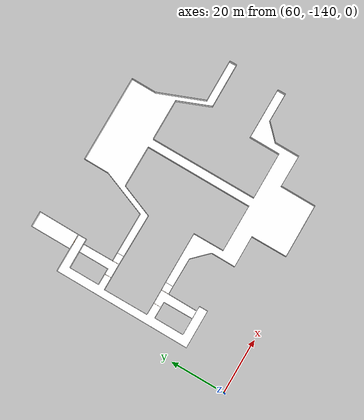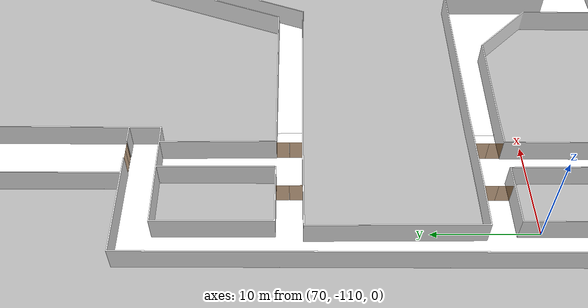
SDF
<sdf version="1.7">
 <world name="world">
  <scene><ambient>0.8 0.8 0.8 1.0</ambient><background>0 0 0</background><grid>false</grid></scene>
  <include><uri>model://sun</uri></include>
  <model name="L1_door1">
   <pose>77.99642685221026 -71.89985735139282 0.0 0 0 -3.137691997890062</pose>
   <link name="right">
    <pose>0.5355837918426652 0 1.11 0 0 0</pose>
    <visual name="right_visual">
     <geometry><box><size>1.0611675836853305 0.03 2.2</size></box></geometry>
     <material><ambient>0.5 0.25 0 0.6</ambient><diffuse>0.5 0.25 0 0.6</diffuse></material>
    </visual>
    <collision name="right_collision">
     <geometry><box><size>1.0611675836853305 0.03 2.2</size></box></geometry>
     <surface><contact><collide_bitmask>0x02</collide_bitmask></contact></surface>
    </collision>
    <inertial>
     <mass>50.0</mass>
     <inertia><ixx>20.17041666666667</ixx><iyy>24.85865266943568</iyy><izz>4.695736002769012</izz></inertia>
    </inertial>
   </link>
   <joint name="right_joint" type="revolute">
    <parent>world</parent>
    <child>right</child>
    <axis><xyz>0 0 -1</xyz><limit><lower>0</lower><upper>1.57</upper></limit></axis>
    <pose>0.5355837918426652 0 0 0 0 0</pose>
   </joint>
   <link name="left">
    <pose>-0.5355837918426652 0 1.11 0 0 0</pose>
    <visual name="left_visual">
     <geometry><box><size>1.0611675836853305 0.03 2.2</size></box></geometry>
     <material><ambient>0.5 0.25 0 0.6</ambient><diffuse>0.5 0.25 0 0.6</diffuse></material>
    </visual>
    <collision name="left_collision">
     <geometry><box><size>1.0611675836853305 0.03 2.2</size></box></geometry>
     <surface><contact><collide_bitmask>0x02</collide_bitmask></contact></surface>
    </collision>
    <inertial>
     <mass>50.0</mass>
     <inertia><ixx>20.17041666666667</ixx><iyy>24.85865266943568</iyy><izz>4.695736002769012</izz></inertia>
    </inertial>
   </link>
   <joint name="left_joint" type="revolute">
    <parent>world</parent>
    <child>left</child>
    <axis><xyz>0 0 -1</xyz><limit><lower>-1.57</lower><upper>0</upper></limit></axis>
    <pose>-0.5355837918426652 0 0 0 0 0</pose>
   </joint>
   <plugin name="door" filename="libdoor.so">
    <v_max_door>0.5</v_max_door>
    <a_max_door>0.3</a_max_door>
    <a_nom_door>0.15</a_nom_door>
    <dx_min_door>0.01</dx_min_door>
    <f_max_door>500.0</f_max_door>
    <door name="L1_door1" type="DoubleSwingDoor" left_joint_name="left_joint" right_joint_name="right_joint"/>
   </plugin>
  </model>
  <model name="L1_door4">
   <pose>73.75459065098626 -106.46719445150771 0.0 0 0 1.5707963267948966</pose>
   <link name="right">
    <pose>0.699244644789033 0 1.11 0 0 0</pose>
    <visual name="right_visual">
     <geometry><box><size>1.388489289578066 0.03 2.2</size></box></geometry>
     <material><ambient>0.5 0.25 0 0.6</ambient><diffuse>0.5 0.25 0 0.6</diffuse></material>
    </visual>
    <collision name="right_collision">
     <geometry><box><size>1.388489289578066 0.03 2.2</size></box></geometry>
     <surface><contact><collide_bitmask>0x02</collide_bitmask></contact></surface>
    </collision>
    <inertial>
     <mass>50.0</mass>
     <inertia><ixx>20.17041666666667</ixx><iyy>28.199593780304184</iyy><izz>8.036677113637511</izz></inertia>
    </inertial>
   </link>
   <joint name="right_joint" type="prismatic">
    <parent>world</parent>
    <child>right</child>
    <axis>
     <xyz>1 0 0</xyz>
     <limit><lower>0.0</lower><upper>1.398489289578066</upper><effort>500.0</effort></limit>
    </axis>
   </joint>
   <link name="left">
    <pose>-0.699244644789033 0 1.11 0 0 0</pose>
    <visual name="left_visual">
     <geometry><box><size>1.388489289578066 0.03 2.2</size></box></geometry>
     <material><ambient>0.5 0.25 0 0.6</ambient><diffuse>0.5 0.25 0 0.6</diffuse></material>
    </visual>
    <collision name="left_collision">
     <geometry><box><size>1.388489289578066 0.03 2.2</size></box></geometry>
     <surface><contact><collide_bitmask>0x02</collide_bitmask></contact></surface>
    </collision>
    <inertial>
     <mass>50.0</mass>
     <inertia><ixx>20.17041666666667</ixx><iyy>28.199593780304184</iyy><izz>8.036677113637511</izz></inertia>
    </inertial>
   </link>
   <joint name="left_joint" type="prismatic">
    <parent>world</parent>
    <child>left</child>
    <axis>
     <xyz>1 0 0</xyz>
     <limit><lower>-1.398489289578066</lower><upper>0.0</upper><effort>500.0</effort></limit>
    </axis>
   </joint>
   <plugin name="door" filename="libdoor.so">
    <v_max_door>0.2</v_max_door>
    <a_max_door>0.2</a_max_door>
    <a_nom_door>0.08</a_nom_door>
    <dx_min_door>0.001</dx_min_door>
    <f_max_door>100.0</f_max_door>
    <door name="L1_door4" type="DoubleSlidingDoor" left_joint_name="left_joint" right_joint_name="right_joint"/>
   </plugin>
  </model>
  <model name="L1_door2">
   <pose>73.8762183539019 -87.39019242674723 0.0 0 0 1.5826411842154644</pose>
   <link name="right">
    <pose>0.6388322865796074 0 1.11 0 0 0</pose>
    <visual name="right_visual">
     <geometry><box><size>1.2676645731592149 0.03 2.2</size></box></geometry>
     <material><ambient>0.5 0.25 0 0.6</ambient><diffuse>0.5 0.25 0 0.6</diffuse></material>
    </visual>
    <collision name="right_collision">
     <geometry><box><size>1.2676645731592149 0.03 2.2</size></box></geometry>
     <surface><contact><collide_bitmask>0x02</collide_bitmask></contact></surface>
    </collision>
    <inertial>
     <mass>50.0</mass>
     <inertia><ixx>20.17041666666667</ixx><iyy>26.862389458512233</iyy><izz>6.699472791845561</izz></inertia>
    </inertial>
   </link>
   <joint name="right_joint" type="prismatic">
    <parent>world</parent>
    <child>right</child>
    <axis>
     <xyz>1 0 0</xyz>
     <limit><lower>0.0</lower><upper>1.277664573159215</upper><effort>500.0</effort></limit>
    </axis>
   </joint>
   <link name="left">
    <pose>-0.6388322865796074 0 1.11 0 0 0</pose>
    <visual name="left_visual">
     <geometry><box><size>1.2676645731592149 0.03 2.2</size></box></geometry>
     <material><ambient>0.5 0.25 0 0.6</ambient><diffuse>0.5 0.25 0 0.6</diffuse></material>
    </visual>
    <collision name="left_collision">
     <geometry><box><size>1.2676645731592149 0.03 2.2</size></box></geometry>
     <surface><contact><collide_bitmask>0x02</collide_bitmask></contact></surface>
    </collision>
    <inertial>
     <mass>50.0</mass>
     <inertia><ixx>20.17041666666667</ixx><iyy>26.862389458512233</iyy><izz>6.699472791845561</izz></inertia>
    </inertial>
   </link>
   <joint name="left_joint" type="prismatic">
    <parent>world</parent>
    <child>left</child>
    <axis>
     <xyz>1 0 0</xyz>
     <limit><lower>-1.277664573159215</lower><upper>0.0</upper><effort>500.0</effort></limit>
    </axis>
   </joint>
   <plugin name="door" filename="libdoor.so">
    <v_max_door>0.2</v_max_door>
    <a_max_door>0.2</a_max_door>
    <a_nom_door>0.08</a_nom_door>
    <dx_min_door>0.001</dx_min_door>
    <f_max_door>100.0</f_max_door>
    <door name="L1_door2" type="DoubleSlidingDoor" left_joint_name="left_joint" right_joint_name="right_joint"/>
   </plugin>
  </model>
  <model name="L1_door3">
   <pose>78.99411031391465 -87.37877868336511 0.0 0 0 1.5707963267948966</pose>
   <link name="right">
    <pose>0.6330806011208416 0 1.11 0 0 0</pose>
    <visual name="right_visual">
     <geometry><box><size>1.2561612022416833 0.03 2.2</size></box></geometry>
     <material><ambient>0.5 0.25 0 0.6</ambient><diffuse>0.5 0.25 0 0.6</diffuse></material>
    </visual>
    <collision name="right_collision">
     <geometry><box><size>1.2561612022416833 0.03 2.2</size></box></geometry>
     <surface><contact><collide_bitmask>0x02</collide_bitmask></contact></surface>
    </collision>
    <inertial>
     <mass>50.0</mass>
     <inertia><ixx>20.17041666666667</ixx><iyy>26.741420691738636</iyy><izz>6.578504025071964</izz></inertia>
    </inertial>
   </link>
   <joint name="right_joint" type="revolute">
    <parent>world</parent>
    <child>right</child>
    <axis><xyz>0 0 -1</xyz><limit><lower>0</lower><upper>1.57</upper></limit></axis>
    <pose>0.6330806011208416 0 0 0 0 0</pose>
   </joint>
   <link name="left">
    <pose>-0.6330806011208416 0 1.11 0 0 0</pose>
    <visual name="left_visual">
     <geometry><box><size>1.2561612022416833 0.03 2.2</size></box></geometry>
     <material><ambient>0.5 0.25 0 0.6</ambient><diffuse>0.5 0.25 0 0.6</diffuse></material>
    </visual>
    <collision name="left_collision">
     <geometry><box><size>1.2561612022416833 0.03 2.2</size></box></geometry>
     <surface><contact><collide_bitmask>0x02</collide_bitmask></contact></surface>
    </collision>
    <inertial>
     <mass>50.0</mass>
     <inertia><ixx>20.17041666666667</ixx><iyy>26.741420691738636</iyy><izz>6.578504025071964</izz></inertia>
    </inertial>
   </link>
   <joint name="left_joint" type="revolute">
    <parent>world</parent>
    <child>left</child>
    <axis><xyz>0 0 -1</xyz><limit><lower>-1.57</lower><upper>0</upper></limit></axis>
    <pose>-0.6330806011208416 0 0 0 0 0</pose>
   </joint>
   <plugin name="door" filename="libdoor.so">
    <v_max_door>0.5</v_max_door>
    <a_max_door>0.3</a_max_door>
    <a_nom_door>0.15</a_nom_door>
    <dx_min_door>0.01</dx_min_door>
    <f_max_door>500.0</f_max_door>
    <door name="L1_door3" type="DoubleSwingDoor" left_joint_name="left_joint" right_joint_name="right_joint"/>
   </plugin>
  </model>
  <model name="L1_door5">
   <pose>78.82616523272068 -106.42398528013256 0.0 0 0 1.5707963267948966</pose>
   <link name="right">
    <pose>0.7026076227498308 0 1.11 0 0 0</pose>
    <visual name="right_visual">
     <geometry><box><size>1.3952152454996616 0.03 2.2</size></box></geometry>
     <material><ambient>0.5 0.25 0 0.6</ambient><diffuse>0.5 0.25 0 0.6</diffuse></material>
    </visual>
    <collision name="right_collision">
     <geometry><box><size>1.3952152454996616 0.03 2.2</size></box></geometry>
     <surface><contact><collide_bitmask>0x02</collide_bitmask></contact></surface>
    </collision>
    <inertial>
     <mass>50.0</mass>
     <inertia><ixx>20.17041666666667</ixx><iyy>28.27760658864451</iyy><izz>8.114689921977837</izz></inertia>
    </inertial>
   </link>
   <joint name="right_joint" type="revolute">
    <parent>world</parent>
    <child>right</child>
    <axis><xyz>0 0 -1</xyz><limit><lower>0</lower><upper>1.57</upper></limit></axis>
    <pose>0.7026076227498308 0 0 0 0 0</pose>
   </joint>
   <link name="left">
    <pose>-0.7026076227498308 0 1.11 0 0 0</pose>
    <visual name="left_visual">
     <geometry><box><size>1.3952152454996616 0.03 2.2</size></box></geometry>
     <material><ambient>0.5 0.25 0 0.6</ambient><diffuse>0.5 0.25 0 0.6</diffuse></material>
    </visual>
    <collision name="left_collision">
     <geometry><box><size>1.3952152454996616 0.03 2.2</size></box></geometry>
     <surface><contact><collide_bitmask>0x02</collide_bitmask></contact></surface>
    </collision>
    <inertial>
     <mass>50.0</mass>
     <inertia><ixx>20.17041666666667</ixx><iyy>28.27760658864451</iyy><izz>8.114689921977837</izz></inertia>
    </inertial>
   </link>
   <joint name="left_joint" type="revolute">
    <parent>world</parent>
    <child>left</child>
    <axis><xyz>0 0 -1</xyz><limit><lower>-1.57</lower><upper>0</upper></limit></axis>
    <pose>-0.7026076227498308 0 0 0 0 0</pose>
   </joint>
   <plugin name="door" filename="libdoor.so">
    <v_max_door>0.5</v_max_door>
    <a_max_door>0.3</a_max_door>
    <a_nom_door>0.15</a_nom_door>
    <dx_min_door>0.01</dx_min_door>
    <f_max_door>500.0</f_max_door>
    <door name="L1_door5" type="DoubleSwingDoor" left_joint_name="left_joint" right_joint_name="right_joint"/>
   </plugin>
  </model>
  <include><name>glhd_L1</name><uri>model://glhd_L1</uri></include>
  <rmf_charger_waypoints name="charger_waypoints">
   <rmf_vertex name="deliverybot_charger" x="75.96488243861712" y="-63.72282739391606" level="L1"/>
  </rmf_charger_waypoints>
 </world>
</sdf>

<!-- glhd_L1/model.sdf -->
<sdf version="1.7">
  <model name="glhd_L1">
    <static>true</static>
    <link name="floor_1">
      <visual name="visual">
        <geometry>
          <mesh>
            <uri>model://glhd_L1/meshes/floor_1.obj</uri>
          </mesh>
        </geometry>
        <material>
          <diffuse>1.0 1.0 1.0</diffuse>
          <specular>0.1 0.1 0.1</specular>
          <pbr>
            <metal>
              <metalness>0.0</metalness>
              <albedo_map>model://glhd_L1/meshes/beige_tiles.png</albedo_map>
            </metal>
          </pbr>
          <script>
            <uri>model://glhd_L1/meshes/</uri>
            <name>floor_1_Diffuse</name>
          </script>
        </material>
      </visual>
      <collision name="collision">
        <geometry>
          <mesh>
            <uri>model://glhd_L1/meshes/floor_1.obj</uri>
          </mesh>
        </geometry>
        <surface>
          <contact>
            <collide_bitmask>0x01</collide_bitmask>
          </contact>
        </surface>
      </collision>
    </link>
    <link name="floor_2">
      <visual name="visual">
        <geometry>
          <mesh>
            <uri>model://glhd_L1/meshes/floor_2.obj</uri>
          </mesh>
        </geometry>
        <material>
          <diffuse>1.0 1.0 1.0</diffuse>
          <specular>0.1 0.1 0.1</specular>
          <pbr>
            <metal>
              <metalness>0.0</metalness>
              <albedo_map>model://glhd_L1/meshes/blue_linoleum.png</albedo_map>
            </metal>
          </pbr>
          <script>
            <uri>model://glhd_L1/meshes/</uri>
            <name>floor_2_Diffuse</name>
          </script>
        </material>
      </visual>
      <collision name="collision">
        <geometry>
          <mesh>
            <uri>model://glhd_L1/meshes/floor_2.obj</uri>
          </mesh>
        </geometry>
        <surface>
          <contact>
            <collide_bitmask>0x01</collide_bitmask>
          </contact>
        </surface>
      </collision>
    </link>
    <link name="floor_3">
      <visual name="visual">
        <geometry>
          <mesh>
            <uri>model://glhd_L1/meshes/floor_3.obj</uri>
          </mesh>
        </geometry>
        <material>
          <diffuse>1.0 1.0 1.0</diffuse>
          <specular>0.1 0.1 0.1</specular>
          <pbr>
            <metal>
              <metalness>0.0</metalness>
              <albedo_map>model://glhd_L1/meshes/brown_marble.png</albedo_map>
            </metal>
          </pbr>
          <script>
            <uri>model://glhd_L1/meshes/</uri>
            <name>floor_3_Diffuse</name>
          </script>
        </material>
      </visual>
      <collision name="collision">
        <geometry>
          <mesh>
            <uri>model://glhd_L1/meshes/floor_3.obj</uri>
          </mesh>
        </geometry>
        <surface>
          <contact>
            <collide_bitmask>0x01</collide_bitmask>
          </contact>
        </surface>
      </collision>
    </link>
    <link name="wall_1">
      <visual name="wall_1">
        <geometry>
          <mesh>
            <uri>model://glhd_L1/meshes/wall_1.obj</uri>
          </mesh>
        </geometry>
        <transparency>0.0</transparency>
        <material>
          <diffuse>1.0 1.0 1.0</diffuse>
          <specular>0.1 0.1 0.1</specular>
          <pbr>
            <metal>
              <metalness>0.0</metalness>
              <albedo_map>model://glhd_L1/meshes/default.png</albedo_map>
            </metal>
          </pbr>
          <script>
            <uri>model://glhd_L1/meshes/</uri>
            <name>wall_1_Diffuse</name>
          </script>
        </material>
      </visual>
      <collision name="collision">
        <geometry>
          <mesh>
            <uri>model://glhd_L1/meshes/wall_1.obj</uri>
          </mesh>
        </geometry>
        <surface>
          <contact>
            <collide_bitmask>0x01</collide_bitmask>
          </contact>
        </surface>
      </collision>
      <pose>66.44639466819869 -135.31092229621646 0 0 0 0</pose>
    </link>
  </model>
</sdf>
